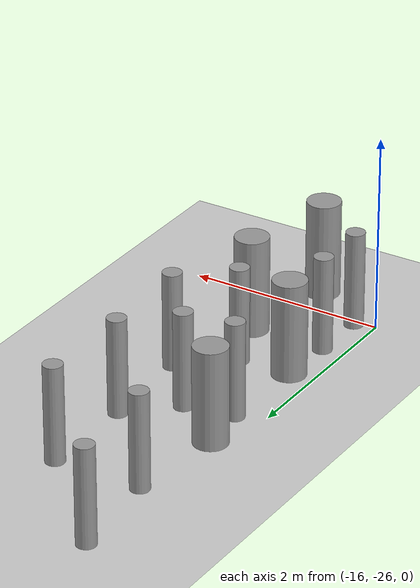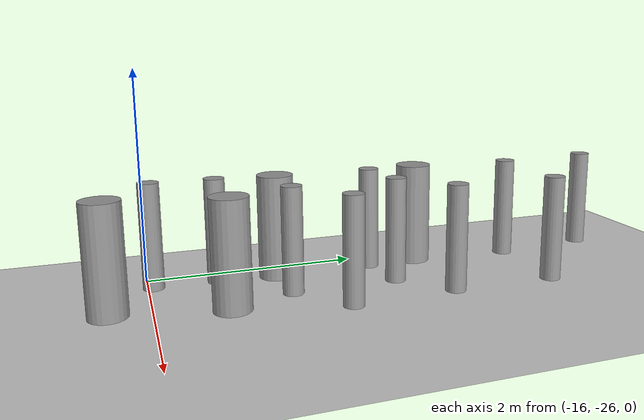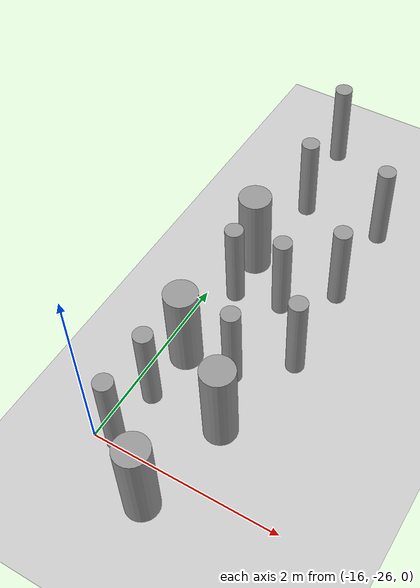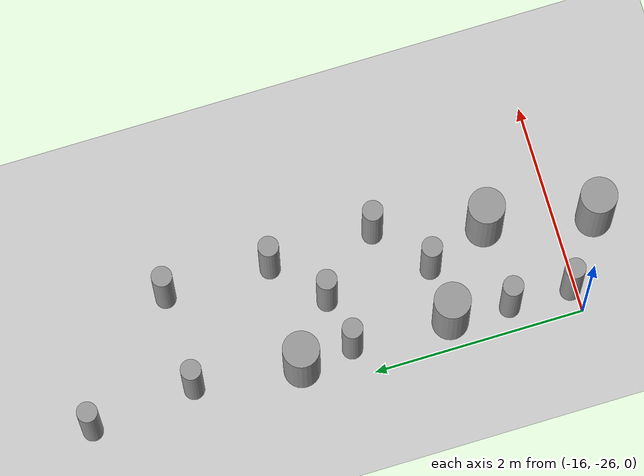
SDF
<sdf version="1.6">
 <world name="default">
  <model name="ground_plane">
   <static>1</static>
   <link name="link">
    <collision name="collision">
     <geometry><plane><normal>0 0 1</normal><size>100 100</size></plane></geometry>
     <surface><friction><ode><mu>100</mu><mu2>50</mu2></ode></friction></surface>
    </collision>
    <visual name="visual">
     <cast_shadows>0</cast_shadows>
     <geometry><plane><normal>0 0 1</normal><size>100 100</size></plane></geometry>
     <material>
      <script><uri>file://media/materials/scripts/gazebo.material</uri><name>Gazebo/Grey</name></script>
     </material>
    </visual>
   </link>
  </model>
  <model name="cyl_wall_clone_clone_1_clone_1_clone_clone_clone_clone_4">
   <link name="link_0">
    <pose>-2.73893 -0.366465 0 0 -0 0</pose>
    <inertial>
     <mass>0.0374993</mass>
     <inertia>
      <ixx>0.00321281</ixx>
      <ixy>0</ixy>
      <ixz>0</ixz>
      <iyy>0.00321281</iyy>
      <iyz>0</iyz>
      <izz>0.000175774</izz>
     </inertia>
    </inertial>
    <visual name="visual">
     <geometry><cylinder><radius>0.0968661</radius><length>1</length></cylinder></geometry>
     <material>
      <lighting>1</lighting>
      <script><uri>file://media/materials/scripts/gazebo.material</uri><name>Gazebo/Grey</name></script>
      <ambient>0.3 0.3 0.3 1</ambient>
      <diffuse>0.7 0.7 0.7 1</diffuse>
      <specular>0.01 0.01 0.01 1</specular>
      <emissive>0 0 0 1</emissive>
     </material>
    </visual>
    <collision name="collision">
     <geometry><cylinder><radius>0.096866</radius><length>1</length></cylinder></geometry>
     <surface>
      <friction>
       <ode><mu>1</mu><mu2>1</mu2><fdir1>0 0 0</fdir1><slip1>0</slip1><slip2>0</slip2></ode>
       <torsional>
        <coefficient>1</coefficient>
        <patch_radius>0</patch_radius>
        <surface_radius>0</surface_radius>
        <use_patch_radius>1</use_patch_radius>
        <ode><slip>0</slip></ode>
       </torsional>
      </friction>
      <bounce><restitution_coefficient>0</restitution_coefficient><threshold>1e+06</threshold></bounce>
      <contact>
       <collide_without_contact>0</collide_without_contact>
       <collide_without_contact_bitmask>1</collide_without_contact_bitmask>
       <collide_bitmask>1</collide_bitmask>
       <ode>
        <soft_cfm>0</soft_cfm>
        <soft_erp>0.2</soft_erp>
        <kp>1e+13</kp>
        <kd>1</kd>
        <max_vel>0.01</max_vel>
        <min_depth>0</min_depth>
       </ode>
       <bullet>
        <split_impulse>1</split_impulse>
        <split_impulse_penetration_threshold>-0.01</split_impulse_penetration_threshold>
        <soft_cfm>0</soft_cfm>
        <soft_erp>0.2</soft_erp>
        <kp>1e+13</kp>
        <kd>1</kd>
       </bullet>
      </contact>
     </surface>
    </collision>
   </link>
   <link name="link_0_clone">
    <pose>-1.73893 0.61877 0 0 -0 0</pose>
    <inertial>
     <mass>0.0374993</mass>
     <inertia>
      <ixx>0.00321281</ixx>
      <ixy>0</ixy>
      <ixz>0</ixz>
      <iyy>0.00321281</iyy>
      <iyz>0</iyz>
      <izz>0.000175774</izz>
     </inertia>
    </inertial>
    <visual name="visual">
     <geometry><cylinder><radius>0.0968661</radius><length>1</length></cylinder></geometry>
     <material>
      <lighting>1</lighting>
      <script><uri>file://media/materials/scripts/gazebo.material</uri><name>Gazebo/Grey</name></script>
      <ambient>0.3 0.3 0.3 1</ambient>
      <diffuse>0.7 0.7 0.7 1</diffuse>
      <specular>0.01 0.01 0.01 1</specular>
      <emissive>0 0 0 1</emissive>
      <shader type="pixel"/>
     </material>
    </visual>
    <collision name="collision">
     <geometry><cylinder><radius>0.096866</radius><length>1</length></cylinder></geometry>
     <surface>
      <friction>
       <ode><mu>1</mu><mu2>1</mu2><fdir1>0 0 0</fdir1><slip1>0</slip1><slip2>0</slip2></ode>
       <torsional>
        <coefficient>1</coefficient>
        <patch_radius>0</patch_radius>
        <surface_radius>0</surface_radius>
        <use_patch_radius>1</use_patch_radius>
        <ode><slip>0</slip></ode>
       </torsional>
      </friction>
      <bounce><restitution_coefficient>0</restitution_coefficient><threshold>1e+06</threshold></bounce>
      <contact>
       <collide_without_contact>0</collide_without_contact>
       <collide_without_contact_bitmask>1</collide_without_contact_bitmask>
       <collide_bitmask>1</collide_bitmask>
       <ode>
        <soft_cfm>0</soft_cfm>
        <soft_erp>0.2</soft_erp>
        <kp>1e+13</kp>
        <kd>1</kd>
        <max_vel>0.01</max_vel>
        <min_depth>0</min_depth>
       </ode>
       <bullet>
        <split_impulse>1</split_impulse>
        <split_impulse_penetration_threshold>-0.01</split_impulse_penetration_threshold>
        <soft_cfm>0</soft_cfm>
        <soft_erp>0.2</soft_erp>
        <kp>1e+13</kp>
        <kd>1</kd>
       </bullet>
      </contact>
     </surface>
    </collision>
   </link>
   <link name="link_0_clone_clone">
    <pose>-0.327073 0.143919 0 0 -0 0</pose>
    <inertial>
     <mass>0.0374993</mass>
     <inertia>
      <ixx>0.00321281</ixx>
      <ixy>0</ixy>
      <ixz>0</ixz>
      <iyy>0.00321281</iyy>
      <iyz>0</iyz>
      <izz>0.000175774</izz>
     </inertia>
    </inertial>
    <visual name="visual">
     <geometry><cylinder><radius>0.0968661</radius><length>1</length></cylinder></geometry>
     <material>
      <lighting>1</lighting>
      <script><uri>file://media/materials/scripts/gazebo.material</uri><name>Gazebo/Grey</name></script>
      <ambient>0.3 0.3 0.3 1</ambient>
      <diffuse>0.7 0.7 0.7 1</diffuse>
      <specular>0.01 0.01 0.01 1</specular>
      <emissive>0 0 0 1</emissive>
      <shader type="pixel"/>
     </material>
    </visual>
    <collision name="collision">
     <geometry><cylinder><radius>0.096866</radius><length>1</length></cylinder></geometry>
     <surface>
      <friction>
       <ode><mu>1</mu><mu2>1</mu2><fdir1>0 0 0</fdir1><slip1>0</slip1><slip2>0</slip2></ode>
       <torsional>
        <coefficient>1</coefficient>
        <patch_radius>0</patch_radius>
        <surface_radius>0</surface_radius>
        <use_patch_radius>1</use_patch_radius>
        <ode><slip>0</slip></ode>
       </torsional>
      </friction>
      <bounce><restitution_coefficient>0</restitution_coefficient><threshold>1e+06</threshold></bounce>
      <contact>
       <collide_without_contact>0</collide_without_contact>
       <collide_without_contact_bitmask>1</collide_without_contact_bitmask>
       <collide_bitmask>1</collide_bitmask>
       <ode>
        <soft_cfm>0</soft_cfm>
        <soft_erp>0.2</soft_erp>
        <kp>1e+13</kp>
        <kd>1</kd>
        <max_vel>0.01</max_vel>
        <min_depth>0</min_depth>
       </ode>
       <bullet>
        <split_impulse>1</split_impulse>
        <split_impulse_penetration_threshold>-0.01</split_impulse_penetration_threshold>
        <soft_cfm>0</soft_cfm>
        <soft_erp>0.2</soft_erp>
        <kp>1e+13</kp>
        <kd>1</kd>
       </bullet>
      </contact>
     </surface>
    </collision>
   </link>
   <link name="link_0_clone_clone_0">
    <pose>1.26107 -0.419359 0 0 -0 0</pose>
    <inertial>
     <mass>0.0374993</mass>
     <inertia>
      <ixx>0.00321281</ixx>
      <ixy>0</ixy>
      <ixz>0</ixz>
      <iyy>0.00321281</iyy>
      <iyz>0</iyz>
      <izz>0.000175774</izz>
     </inertia>
    </inertial>
    <visual name="visual">
     <geometry><cylinder><radius>0.0968661</radius><length>1</length></cylinder></geometry>
     <material>
      <lighting>1</lighting>
      <script><uri>file://media/materials/scripts/gazebo.material</uri><name>Gazebo/Grey</name></script>
      <ambient>0.3 0.3 0.3 1</ambient>
      <diffuse>0.7 0.7 0.7 1</diffuse>
      <specular>0.01 0.01 0.01 1</specular>
      <emissive>0 0 0 1</emissive>
      <shader type="pixel"/>
     </material>
    </visual>
    <collision name="collision">
     <geometry><cylinder><radius>0.096866</radius><length>1</length></cylinder></geometry>
     <surface>
      <friction>
       <ode><mu>1</mu><mu2>1</mu2><fdir1>0 0 0</fdir1><slip1>0</slip1><slip2>0</slip2></ode>
       <torsional>
        <coefficient>1</coefficient>
        <patch_radius>0</patch_radius>
        <surface_radius>0</surface_radius>
        <use_patch_radius>1</use_patch_radius>
        <ode><slip>0</slip></ode>
       </torsional>
      </friction>
      <bounce><restitution_coefficient>0</restitution_coefficient><threshold>1e+06</threshold></bounce>
      <contact>
       <collide_without_contact>0</collide_without_contact>
       <collide_without_contact_bitmask>1</collide_without_contact_bitmask>
       <collide_bitmask>1</collide_bitmask>
       <ode>
        <soft_cfm>0</soft_cfm>
        <soft_erp>0.2</soft_erp>
        <kp>1e+13</kp>
        <kd>1</kd>
        <max_vel>0.01</max_vel>
        <min_depth>0</min_depth>
       </ode>
       <bullet>
        <split_impulse>1</split_impulse>
        <split_impulse_penetration_threshold>-0.01</split_impulse_penetration_threshold>
        <soft_cfm>0</soft_cfm>
        <soft_erp>0.2</soft_erp>
        <kp>1e+13</kp>
        <kd>1</kd>
       </bullet>
      </contact>
     </surface>
    </collision>
   </link>
   <link name="link_0_clone_clone_1">
    <pose>-1.73893 -0.277168 0 0 -0 0</pose>
    <inertial>
     <mass>0.0374993</mass>
     <inertia>
      <ixx>0.00321281</ixx>
      <ixy>0</ixy>
      <ixz>0</ixz>
      <iyy>0.00321281</iyy>
      <iyz>0</iyz>
      <izz>0.000175774</izz>
     </inertia>
    </inertial>
    <visual name="visual">
     <geometry><cylinder><radius>0.0968661</radius><length>1</length></cylinder></geometry>
     <material>
      <lighting>1</lighting>
      <script><uri>file://media/materials/scripts/gazebo.material</uri><name>Gazebo/Grey</name></script>
      <ambient>0.3 0.3 0.3 1</ambient>
      <diffuse>0.7 0.7 0.7 1</diffuse>
      <specular>0.01 0.01 0.01 1</specular>
      <emissive>0 0 0 1</emissive>
      <shader type="pixel"/>
     </material>
    </visual>
    <collision name="collision">
     <geometry><cylinder><radius>0.096866</radius><length>1</length></cylinder></geometry>
     <surface>
      <friction>
       <ode><mu>1</mu><mu2>1</mu2><fdir1>0 0 0</fdir1><slip1>0</slip1><slip2>0</slip2></ode>
       <torsional>
        <coefficient>1</coefficient>
        <patch_radius>0</patch_radius>
        <surface_radius>0</surface_radius>
        <use_patch_radius>1</use_patch_radius>
        <ode><slip>0</slip></ode>
       </torsional>
      </friction>
      <bounce><restitution_coefficient>0</restitution_coefficient><threshold>1e+06</threshold></bounce>
      <contact>
       <collide_without_contact>0</collide_without_contact>
       <collide_without_contact_bitmask>1</collide_without_contact_bitmask>
       <collide_bitmask>1</collide_bitmask>
       <ode>
        <soft_cfm>0</soft_cfm>
        <soft_erp>0.2</soft_erp>
        <kp>1e+13</kp>
        <kd>1</kd>
        <max_vel>0.01</max_vel>
        <min_depth>0</min_depth>
       </ode>
       <bullet>
        <split_impulse>1</split_impulse>
        <split_impulse_penetration_threshold>-0.01</split_impulse_penetration_threshold>
        <soft_cfm>0</soft_cfm>
        <soft_erp>0.2</soft_erp>
        <kp>1e+13</kp>
        <kd>1</kd>
       </bullet>
      </contact>
     </surface>
    </collision>
   </link>
   <link name="link_0_clone_clone_2">
    <pose>-0.738934 0.593961 0 0 -0 0</pose>
    <inertial>
     <mass>0.0374993</mass>
     <inertia>
      <ixx>0.00321281</ixx>
      <ixy>0</ixy>
      <ixz>0</ixz>
      <iyy>0.00321281</iyy>
      <iyz>0</iyz>
      <izz>0.000175774</izz>
     </inertia>
    </inertial>
    <visual name="visual">
     <geometry><cylinder><radius>0.0968661</radius><length>1</length></cylinder></geometry>
     <material>
      <lighting>1</lighting>
      <script><uri>file://media/materials/scripts/gazebo.material</uri><name>Gazebo/Grey</name></script>
      <ambient>0.3 0.3 0.3 1</ambient>
      <diffuse>0.7 0.7 0.7 1</diffuse>
      <specular>0.01 0.01 0.01 1</specular>
      <emissive>0 0 0 1</emissive>
      <shader type="pixel"/>
     </material>
    </visual>
    <collision name="collision">
     <geometry><cylinder><radius>0.096866</radius><length>1</length></cylinder></geometry>
     <surface>
      <friction>
       <ode><mu>1</mu><mu2>1</mu2><fdir1>0 0 0</fdir1><slip1>0</slip1><slip2>0</slip2></ode>
       <torsional>
        <coefficient>1</coefficient>
        <patch_radius>0</patch_radius>
        <surface_radius>0</surface_radius>
        <use_patch_radius>1</use_patch_radius>
        <ode><slip>0</slip></ode>
       </torsional>
      </friction>
      <bounce><restitution_coefficient>0</restitution_coefficient><threshold>1e+06</threshold></bounce>
      <contact>
       <collide_without_contact>0</collide_without_contact>
       <collide_without_contact_bitmask>1</collide_without_contact_bitmask>
       <collide_bitmask>1</collide_bitmask>
       <ode>
        <soft_cfm>0</soft_cfm>
        <soft_erp>0.2</soft_erp>
        <kp>1e+13</kp>
        <kd>1</kd>
        <max_vel>0.01</max_vel>
        <min_depth>0</min_depth>
       </ode>
       <bullet>
        <split_impulse>1</split_impulse>
        <split_impulse_penetration_threshold>-0.01</split_impulse_penetration_threshold>
        <soft_cfm>0</soft_cfm>
        <soft_erp>0.2</soft_erp>
        <kp>1e+13</kp>
        <kd>1</kd>
       </bullet>
      </contact>
     </surface>
    </collision>
   </link>
   <link name="link_0_clone_clone_3">
    <pose>0.261066 0.624849 0 0 -0 0</pose>
    <inertial>
     <mass>0.0374993</mass>
     <inertia>
      <ixx>0.00321281</ixx>
      <ixy>0</ixy>
      <ixz>0</ixz>
      <iyy>0.00321281</iyy>
      <iyz>0</iyz>
      <izz>0.000175774</izz>
     </inertia>
    </inertial>
    <visual name="visual">
     <geometry><cylinder><radius>0.0968661</radius><length>1</length></cylinder></geometry>
     <material>
      <lighting>1</lighting>
      <script><uri>file://media/materials/scripts/gazebo.material</uri><name>Gazebo/Grey</name></script>
      <ambient>0.3 0.3 0.3 1</ambient>
      <diffuse>0.7 0.7 0.7 1</diffuse>
      <specular>0.01 0.01 0.01 1</specular>
      <emissive>0 0 0 1</emissive>
      <shader type="pixel"/>
     </material>
    </visual>
    <collision name="collision">
     <geometry><cylinder><radius>0.096866</radius><length>1</length></cylinder></geometry>
     <surface>
      <friction>
       <ode><mu>1</mu><mu2>1</mu2><fdir1>0 0 0</fdir1><slip1>0</slip1><slip2>0</slip2></ode>
       <torsional>
        <coefficient>1</coefficient>
        <patch_radius>0</patch_radius>
        <surface_radius>0</surface_radius>
        <use_patch_radius>1</use_patch_radius>
        <ode><slip>0</slip></ode>
       </torsional>
      </friction>
      <bounce><restitution_coefficient>0</restitution_coefficient><threshold>1e+06</threshold></bounce>
      <contact>
       <collide_without_contact>0</collide_without_contact>
       <collide_without_contact_bitmask>1</collide_without_contact_bitmask>
       <collide_bitmask>1</collide_bitmask>
       <ode>
        <soft_cfm>0</soft_cfm>
        <soft_erp>0.2</soft_erp>
        <kp>1e+13</kp>
        <kd>1</kd>
        <max_vel>0.01</max_vel>
        <min_depth>0</min_depth>
       </ode>
       <bullet>
        <split_impulse>1</split_impulse>
        <split_impulse_penetration_threshold>-0.01</split_impulse_penetration_threshold>
        <soft_cfm>0</soft_cfm>
        <soft_erp>0.2</soft_erp>
        <kp>1e+13</kp>
        <kd>1</kd>
       </bullet>
      </contact>
     </surface>
    </collision>
   </link>
   <link name="link_0_clone_clone_4">
    <pose>-0.239049 -0.353105 0 0 -0 0</pose>
    <inertial>
     <mass>0.0374993</mass>
     <inertia>
      <ixx>0.00321281</ixx>
      <ixy>0</ixy>
      <ixz>0</ixz>
      <iyy>0.00321281</iyy>
      <iyz>0</iyz>
      <izz>0.000175774</izz>
     </inertia>
    </inertial>
    <visual name="visual">
     <geometry><cylinder><radius>0.0968661</radius><length>1</length></cylinder></geometry>
     <material>
      <lighting>1</lighting>
      <script><uri>file://media/materials/scripts/gazebo.material</uri><name>Gazebo/Grey</name></script>
      <ambient>0.3 0.3 0.3 1</ambient>
      <diffuse>0.7 0.7 0.7 1</diffuse>
      <specular>0.01 0.01 0.01 1</specular>
      <emissive>0 0 0 1</emissive>
      <shader type="pixel"/>
     </material>
    </visual>
    <collision name="collision">
     <geometry><cylinder><radius>0.096866</radius><length>1</length></cylinder></geometry>
     <surface>
      <friction>
       <ode><mu>1</mu><mu2>1</mu2><fdir1>0 0 0</fdir1><slip1>0</slip1><slip2>0</slip2></ode>
       <torsional>
        <coefficient>1</coefficient>
        <patch_radius>0</patch_radius>
        <surface_radius>0</surface_radius>
        <use_patch_radius>1</use_patch_radius>
        <ode><slip>0</slip></ode>
       </torsional>
      </friction>
      <bounce><restitution_coefficient>0</restitution_coefficient><threshold>1e+06</threshold></bounce>
      <contact>
       <collide_without_contact>0</collide_without_contact>
       <collide_without_contact_bitmask>1</collide_without_contact_bitmask>
       <collide_bitmask>1</collide_bitmask>
       <ode>
        <soft_cfm>0</soft_cfm>
        <soft_erp>0.2</soft_erp>
        <kp>1e+13</kp>
        <kd>1</kd>
        <max_vel>0.01</max_vel>
        <min_depth>0</min_depth>
       </ode>
       <bullet>
        <split_impulse>1</split_impulse>
        <split_impulse_penetration_threshold>-0.01</split_impulse_penetration_threshold>
        <soft_cfm>0</soft_cfm>
        <soft_erp>0.2</soft_erp>
        <kp>1e+13</kp>
        <kd>1</kd>
       </bullet>
      </contact>
     </surface>
    </collision>
   </link>
   <link name="link_0_clone_clone_5">
    <pose>0.672792 0.143919 0 0 -0 0</pose>
    <inertial>
     <mass>0.0374993</mass>
     <inertia>
      <ixx>0.00321281</ixx>
      <ixy>0</ixy>
      <ixz>0</ixz>
      <iyy>0.00321281</iyy>
      <iyz>0</iyz>
      <izz>0.000175774</izz>
     </inertia>
    </inertial>
    <visual name="visual">
     <geometry><cylinder><radius>0.0968661</radius><length>1</length></cylinder></geometry>
     <material>
      <lighting>1</lighting>
      <script><uri>file://media/materials/scripts/gazebo.material</uri><name>Gazebo/Grey</name></script>
      <ambient>0.3 0.3 0.3 1</ambient>
      <diffuse>0.7 0.7 0.7 1</diffuse>
      <specular>0.01 0.01 0.01 1</specular>
      <emissive>0 0 0 1</emissive>
      <shader type="pixel"/>
     </material>
    </visual>
    <collision name="collision">
     <geometry><cylinder><radius>0.096866</radius><length>1</length></cylinder></geometry>
     <surface>
      <friction>
       <ode><mu>1</mu><mu2>1</mu2><fdir1>0 0 0</fdir1><slip1>0</slip1><slip2>0</slip2></ode>
       <torsional>
        <coefficient>1</coefficient>
        <patch_radius>0</patch_radius>
        <surface_radius>0</surface_radius>
        <use_patch_radius>1</use_patch_radius>
        <ode><slip>0</slip></ode>
       </torsional>
      </friction>
      <bounce><restitution_coefficient>0</restitution_coefficient><threshold>1e+06</threshold></bounce>
      <contact>
       <collide_without_contact>0</collide_without_contact>
       <collide_without_contact_bitmask>1</collide_without_contact_bitmask>
       <collide_bitmask>1</collide_bitmask>
       <ode>
        <soft_cfm>0</soft_cfm>
        <soft_erp>0.2</soft_erp>
        <kp>1e+13</kp>
        <kd>1</kd>
        <max_vel>0.01</max_vel>
        <min_depth>0</min_depth>
       </ode>
       <bullet>
        <split_impulse>1</split_impulse>
        <split_impulse_penetration_threshold>-0.01</split_impulse_penetration_threshold>
        <soft_cfm>0</soft_cfm>
        <soft_erp>0.2</soft_erp>
        <kp>1e+13</kp>
        <kd>1</kd>
       </bullet>
      </contact>
     </surface>
    </collision>
   </link>
   <link name="link_0_clone_clone_6">
    <pose>1.84596 -0.433423 0 0 -0 0</pose>
    <inertial>
     <mass>0.0374993</mass>
     <inertia>
      <ixx>0.00321281</ixx>
      <ixy>0</ixy>
      <ixz>0</ixz>
      <iyy>0.00321281</iyy>
      <iyz>0</iyz>
      <izz>0.000175774</izz>
     </inertia>
    </inertial>
    <visual name="visual">
     <geometry><cylinder><radius>0.0968661</radius><length>1</length></cylinder></geometry>
     <material>
      <lighting>1</lighting>
      <script><uri>file://media/materials/scripts/gazebo.material</uri><name>Gazebo/Grey</name></script>
      <ambient>0.3 0.3 0.3 1</ambient>
      <diffuse>0.7 0.7 0.7 1</diffuse>
      <specular>0.01 0.01 0.01 1</specular>
      <emissive>0 0 0 1</emissive>
      <shader type="pixel"/>
     </material>
    </visual>
    <collision name="collision">
     <geometry><cylinder><radius>0.096866</radius><length>1</length></cylinder></geometry>
     <surface>
      <friction>
       <ode><mu>1</mu><mu2>1</mu2><fdir1>0 0 0</fdir1><slip1>0</slip1><slip2>0</slip2></ode>
       <torsional>
        <coefficient>1</coefficient>
        <patch_radius>0</patch_radius>
        <surface_radius>0</surface_radius>
        <use_patch_radius>1</use_patch_radius>
        <ode><slip>0</slip></ode>
       </torsional>
      </friction>
      <bounce><restitution_coefficient>0</restitution_coefficient><threshold>1e+06</threshold></bounce>
      <contact>
       <collide_without_contact>0</collide_without_contact>
       <collide_without_contact_bitmask>1</collide_without_contact_bitmask>
       <collide_bitmask>1</collide_bitmask>
       <ode>
        <soft_cfm>0</soft_cfm>
        <soft_erp>0.2</soft_erp>
        <kp>1e+13</kp>
        <kd>1</kd>
        <max_vel>0.01</max_vel>
        <min_depth>0</min_depth>
       </ode>
       <bullet>
        <split_impulse>1</split_impulse>
        <split_impulse_penetration_threshold>-0.01</split_impulse_penetration_threshold>
        <soft_cfm>0</soft_cfm>
        <soft_erp>0.2</soft_erp>
        <kp>1e+13</kp>
        <kd>1</kd>
       </bullet>
      </contact>
     </surface>
    </collision>
   </link>
   <link name="link_1">
    <pose>-0.738934 -0.397931 0 0 -0 0</pose>
    <inertial>
     <mass>0.117398</mass>
     <inertia>
      <ixx>0.0106445</ixx>
      <ixy>0</ixy>
      <ixz>0</ixz>
      <iyy>0.0106445</iyy>
      <iyz>0</iyz>
      <izz>0.00172278</izz>
     </inertia>
    </inertial>
    <visual name="visual">
     <geometry><cylinder><radius>0.171317</radius><length>1</length></cylinder></geometry>
     <material>
      <lighting>1</lighting>
      <script><uri>file://media/materials/scripts/gazebo.material</uri><name>Gazebo/Grey</name></script>
      <ambient>0.3 0.3 0.3 1</ambient>
      <diffuse>0.7 0.7 0.7 1</diffuse>
      <specular>0.01 0.01 0.01 1</specular>
      <emissive>0 0 0 1</emissive>
     </material>
    </visual>
    <collision name="collision">
     <geometry><cylinder><radius>0.171317</radius><length>1</length></cylinder></geometry>
     <surface>
      <friction>
       <ode><mu>1</mu><mu2>1</mu2><fdir1>0 0 0</fdir1><slip1>0</slip1><slip2>0</slip2></ode>
       <torsional>
        <coefficient>1</coefficient>
        <patch_radius>0</patch_radius>
        <surface_radius>0</surface_radius>
        <use_patch_radius>1</use_patch_radius>
        <ode><slip>0</slip></ode>
       </torsional>
      </friction>
      <bounce><restitution_coefficient>0</restitution_coefficient><threshold>1e+06</threshold></bounce>
      <contact>
       <collide_without_contact>0</collide_without_contact>
       <collide_without_contact_bitmask>1</collide_without_contact_bitmask>
       <collide_bitmask>1</collide_bitmask>
       <ode>
        <soft_cfm>0</soft_cfm>
        <soft_erp>0.2</soft_erp>
        <kp>1e+13</kp>
        <kd>1</kd>
        <max_vel>0.01</max_vel>
        <min_depth>0</min_depth>
       </ode>
       <bullet>
        <split_impulse>1</split_impulse>
        <split_impulse_penetration_threshold>-0.01</split_impulse_penetration_threshold>
        <soft_cfm>0</soft_cfm>
        <soft_erp>0.2</soft_erp>
        <kp>1e+13</kp>
        <kd>1</kd>
       </bullet>
      </contact>
     </surface>
    </collision>
   </link>
   <link name="link_1_clone">
    <pose>0.697784 -0.380861 0 0 -0 0</pose>
    <inertial>
     <mass>0.117398</mass>
     <inertia>
      <ixx>0.0106445</ixx>
      <ixy>0</ixy>
      <ixz>0</ixz>
      <iyy>0.0106445</iyy>
      <iyz>0</iyz>
      <izz>0.00172278</izz>
     </inertia>
    </inertial>
    <visual name="visual">
     <geometry><cylinder><radius>0.171317</radius><length>1</length></cylinder></geometry>
     <material>
      <lighting>1</lighting>
      <script><uri>file://media/materials/scripts/gazebo.material</uri><name>Gazebo/Grey</name></script>
      <ambient>0.3 0.3 0.3 1</ambient>
      <diffuse>0.7 0.7 0.7 1</diffuse>
      <specular>0.01 0.01 0.01 1</specular>
      <emissive>0 0 0 1</emissive>
      <shader type="pixel"/>
     </material>
    </visual>
    <collision name="collision">
     <geometry><cylinder><radius>0.171317</radius><length>1</length></cylinder></geometry>
     <surface>
      <friction>
       <ode><mu>1</mu><mu2>1</mu2><fdir1>0 0 0</fdir1><slip1>0</slip1><slip2>0</slip2></ode>
       <torsional>
        <coefficient>1</coefficient>
        <patch_radius>0</patch_radius>
        <surface_radius>0</surface_radius>
        <use_patch_radius>1</use_patch_radius>
        <ode><slip>0</slip></ode>
       </torsional>
      </friction>
      <bounce><restitution_coefficient>0</restitution_coefficient><threshold>1e+06</threshold></bounce>
      <contact>
       <collide_without_contact>0</collide_without_contact>
       <collide_without_contact_bitmask>1</collide_without_contact_bitmask>
       <collide_bitmask>1</collide_bitmask>
       <ode>
        <soft_cfm>0</soft_cfm>
        <soft_erp>0.2</soft_erp>
        <kp>1e+13</kp>
        <kd>1</kd>
        <max_vel>0.01</max_vel>
        <min_depth>0</min_depth>
       </ode>
       <bullet>
        <split_impulse>1</split_impulse>
        <split_impulse_penetration_threshold>-0.01</split_impulse_penetration_threshold>
        <soft_cfm>0</soft_cfm>
        <soft_erp>0.2</soft_erp>
        <kp>1e+13</kp>
        <kd>1</kd>
       </bullet>
      </contact>
     </surface>
    </collision>
   </link>
   <link name="link_1_clone_0">
    <pose>1.26107 0.358974 0 0 -0 0</pose>
    <inertial>
     <mass>0.117398</mass>
     <inertia>
      <ixx>0.0106445</ixx>
      <ixy>0</ixy>
      <ixz>0</ixz>
      <iyy>0.0106445</iyy>
      <iyz>0</iyz>
      <izz>0.00172278</izz>
     </inertia>
    </inertial>
    <visual name="visual">
     <geometry><cylinder><radius>0.171317</radius><length>1</length></cylinder></geometry>
     <material>
      <lighting>1</lighting>
      <script><uri>file://media/materials/scripts/gazebo.material</uri><name>Gazebo/Grey</name></script>
      <ambient>0.3 0.3 0.3 1</ambient>
      <diffuse>0.7 0.7 0.7 1</diffuse>
      <specular>0.01 0.01 0.01 1</specular>
      <emissive>0 0 0 1</emissive>
      <shader type="pixel"/>
     </material>
    </visual>
    <collision name="collision">
     <geometry><cylinder><radius>0.171317</radius><length>1</length></cylinder></geometry>
     <surface>
      <friction>
       <ode><mu>1</mu><mu2>1</mu2><fdir1>0 0 0</fdir1><slip1>0</slip1><slip2>0</slip2></ode>
       <torsional>
        <coefficient>1</coefficient>
        <patch_radius>0</patch_radius>
        <surface_radius>0</surface_radius>
        <use_patch_radius>1</use_patch_radius>
        <ode><slip>0</slip></ode>
       </torsional>
      </friction>
      <bounce><restitution_coefficient>0</restitution_coefficient><threshold>1e+06</threshold></bounce>
      <contact>
       <collide_without_contact>0</collide_without_contact>
       <collide_without_contact_bitmask>1</collide_without_contact_bitmask>
       <collide_bitmask>1</collide_bitmask>
       <ode>
        <soft_cfm>0</soft_cfm>
        <soft_erp>0.2</soft_erp>
        <kp>1e+13</kp>
        <kd>1</kd>
        <max_vel>0.01</max_vel>
        <min_depth>0</min_depth>
       </ode>
       <bullet>
        <split_impulse>1</split_impulse>
        <split_impulse_penetration_threshold>-0.01</split_impulse_penetration_threshold>
        <soft_cfm>0</soft_cfm>
        <soft_erp>0.2</soft_erp>
        <kp>1e+13</kp>
        <kd>1</kd>
       </bullet>
      </contact>
     </surface>
    </collision>
   </link>
   <link name="link_1_clone_1">
    <pose>2.26107 0.143919 0 0 -0 0</pose>
    <inertial>
     <mass>0.117398</mass>
     <inertia>
      <ixx>0.0106445</ixx>
      <ixy>0</ixy>
      <ixz>0</ixz>
      <iyy>0.0106445</iyy>
      <iyz>0</iyz>
      <izz>0.00172278</izz>
     </inertia>
    </inertial>
    <visual name="visual">
     <geometry><cylinder><radius>0.171317</radius><length>1</length></cylinder></geometry>
     <material>
      <lighting>1</lighting>
      <script><uri>file://media/materials/scripts/gazebo.material</uri><name>Gazebo/Grey</name></script>
      <ambient>0.3 0.3 0.3 1</ambient>
      <diffuse>0.7 0.7 0.7 1</diffuse>
      <specular>0.01 0.01 0.01 1</specular>
      <emissive>0 0 0 1</emissive>
      <shader type="pixel"/>
     </material>
    </visual>
    <collision name="collision">
     <geometry><cylinder><radius>0.171317</radius><length>1</length></cylinder></geometry>
     <surface>
      <friction>
       <ode><mu>1</mu><mu2>1</mu2><fdir1>0 0 0</fdir1><slip1>0</slip1><slip2>0</slip2></ode>
       <torsional>
        <coefficient>1</coefficient>
        <patch_radius>0</patch_radius>
        <surface_radius>0</surface_radius>
        <use_patch_radius>1</use_patch_radius>
        <ode><slip>0</slip></ode>
       </torsional>
      </friction>
      <bounce><restitution_coefficient>0</restitution_coefficient><threshold>1e+06</threshold></bounce>
      <contact>
       <collide_without_contact>0</collide_without_contact>
       <collide_without_contact_bitmask>1</collide_without_contact_bitmask>
       <collide_bitmask>1</collide_bitmask>
       <ode>
        <soft_cfm>0</soft_cfm>
        <soft_erp>0.2</soft_erp>
        <kp>1e+13</kp>
        <kd>1</kd>
        <max_vel>0.01</max_vel>
        <min_depth>0</min_depth>
       </ode>
       <bullet>
        <split_impulse>1</split_impulse>
        <split_impulse_penetration_threshold>-0.01</split_impulse_penetration_threshold>
        <soft_cfm>0</soft_cfm>
        <soft_erp>0.2</soft_erp>
        <kp>1e+13</kp>
        <kd>1</kd>
       </bullet>
      </contact>
     </surface>
    </collision>
   </link>
   <static>1</static>
   <pose>-15.3738 -24.096 0.5 0 0 -1.55814</pose>
  </model>
 </world>
</sdf>
